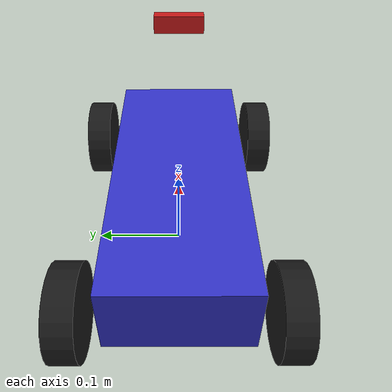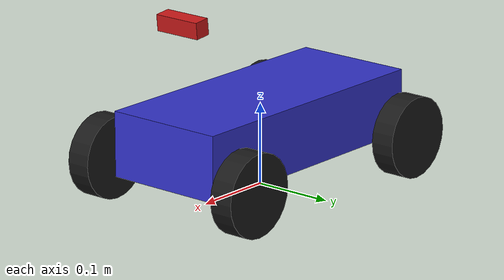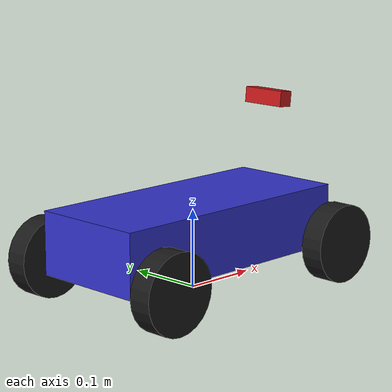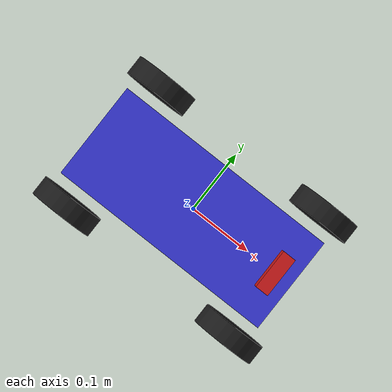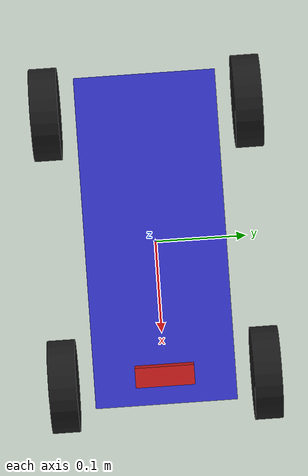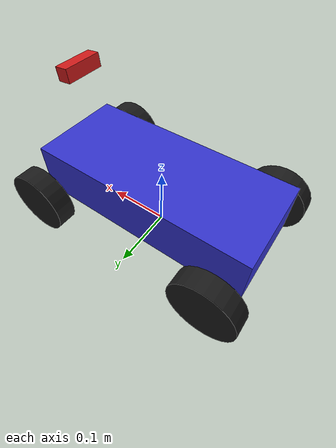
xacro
<?xml version="1.0" encoding="utf-8"?>
<robot name="ackerman_robot" xmlns:xacro="http://www.ros.org/wiki/xacro">

  <!-- ================= PROPERTIES ================= -->

  <!-- ================= BASE ================= -->
  <link name="base_footprint"/>

  <link name="base_link">
    <inertial>
      <origin xyz="0.0115 0 0.0687" rpy="0 0 0" />
      <mass value="1.8886" />
      <inertia ixx="0.00576" ixy="0.0" ixz="0.000003" iyy="0.01878" iyz="0.0" izz="0.02437" />
    </inertial>

    <!-- Chassis Box -->
    <visual>
      <origin xyz="0.01 0 0.05" rpy="0 0 0" />
      <geometry>
        <box size="0.35 0.15 0.08"/>
      </geometry>
      <material name="blue">
        <color rgba="0.2 0.2 0.8 1" />
      </material>
    </visual>
    <collision>
      <origin xyz="0.01 0 0.05" rpy="0 0 0" />
      <geometry>
        <box size="0.35 0.15 0.08"/>
      </geometry>
    </collision>
  </link>

  <joint name="base_joint" type="fixed">
    <origin xyz="-0.0117 0 0.02677" rpy="0 0 0" />
    <parent link="base_footprint" />
    <child link="base_link" />
  </joint>

  <!-- ================= FRONT LEFT STEERING & WHEEL ================= -->
  <link name="FL_STEERING_LINK">
    <inertial>
      <origin xyz="-0.0029 0 0" rpy="0 0 0" />
      <mass value="0.0038" />
      <inertia ixx="0.0000003" ixy="0" ixz="0" iyy="0.0000006" iyz="0" izz="0.0000003" />
    </inertial>
  </link>

  <!-- FL steering: independent position command (no mimic) -->
  <joint name="FL_STEERING_JOINT" type="revolute">
    <origin xyz="0.16174 0.085 0.0235" rpy="0 0 0" />
    <parent link="base_link" />
    <child link="FL_STEERING_LINK" />
    <axis xyz="0 0 1" />
    <limit lower="-0.6" upper="0.6" effort="5" velocity="3" />
  </joint>

  <link name="FL_WHEEL_LINK">
    <inertial>
      <origin xyz="0 0 0" rpy="0 0 0" />
      <mass value="0.0635" />
      <inertia ixx="0.000046" ixy="0" ixz="0" iyy="0.000089" iyz="0" izz="0.000046" />
    </inertial>
    <visual>
      <origin xyz="0 0 0" rpy="1.57079632679 0 0" />
      <geometry>
        <cylinder radius="0.05027" length="0.03"/>
      </geometry>
      <material name="black"><color rgba="0.1 0.1 0.1 1"/></material>
    </visual>
    <collision>
      <origin xyz="0 0 0" rpy="1.57079632679 0 0" />
      <geometry>
        <cylinder radius="0.05027" length="0.03"/>
      </geometry>
    </collision>
  </link>

  <joint name="FL_WHEEL_JOINT" type="continuous">
    <origin xyz="0 0.0245 0" rpy="0 0 0" />
    <parent link="FL_STEERING_LINK" />
    <child link="FL_WHEEL_LINK" />
    <axis xyz="0 1 0" />
  </joint>

  <!-- ================= FRONT RIGHT STEERING & WHEEL ================= -->
  <link name="FR_STEERING_LINK">
    <inertial>
      <origin xyz="0.0015 0 0" rpy="0 0 0" />
      <mass value="0.0047" />
      <inertia ixx="0.0000003" ixy="0" ixz="0" iyy="0.000001" iyz="0" izz="0.0000007" />
    </inertial>
  </link>

  <!-- FR steering: independent — NO mimic. ackermann_steering_controller
       computes separate inner/outer angles from the Ackerman geometry. -->
  <joint name="FR_STEERING_JOINT" type="revolute">
    <origin xyz="0.16174 -0.085 0.0235" rpy="0 0 0" />
    <parent link="base_link" />
    <child link="FR_STEERING_LINK" />
    <axis xyz="0 0 1" />
    <limit lower="-0.6" upper="0.6" effort="5" velocity="3" />
  </joint>

  <link name="FR_WHEEL_LINK">
    <inertial>
      <origin xyz="0 0 0" rpy="0 0 0" />
      <mass value="0.0635" />
      <inertia ixx="0.000046" ixy="0" ixz="0" iyy="0.000089" iyz="0" izz="0.000046" />
    </inertial>
    <visual>
      <origin xyz="0 0 0" rpy="1.57079632679 0 0" />
      <geometry>
        <cylinder radius="0.05027" length="0.03"/>
      </geometry>
      <material name="black"><color rgba="0.1 0.1 0.1 1"/></material>
    </visual>
    <collision>
      <origin xyz="0 0 0" rpy="1.57079632679 0 0" />
      <geometry>
        <cylinder radius="0.05027" length="0.03"/>
      </geometry>
    </collision>
  </link>

  <joint name="FR_WHEEL_JOINT" type="continuous">
    <origin xyz="0 -0.0245 0" rpy="0 0 0" />
    <parent link="FR_STEERING_LINK" />
    <child link="FR_WHEEL_LINK" />
    <axis xyz="0 1 0" />
  </joint>

  <!-- ================= REAR LEFT WHEEL ================= -->
  <link name="BL_WHEEL_LINK">
    <inertial>
      <origin xyz="0 0 0" rpy="0 0 0" />
      <mass value="0.0616" />
      <inertia ixx="0.000046" ixy="0" ixz="0" iyy="0.000089" iyz="0" izz="0.000046" />
    </inertial>
    <visual>
      <origin xyz="0 0 0" rpy="1.57079632679 0 0" />
      <geometry>
        <cylinder radius="0.05027" length="0.03"/>
      </geometry>
      <material name="black"><color rgba="0.1 0.1 0.1 1"/></material>
    </visual>
    <collision>
      <origin xyz="0 0 0" rpy="1.57079632679 0 0" />
      <geometry>
        <cylinder radius="0.05027" length="0.03"/>
      </geometry>
    </collision>
  </link>

  <joint name="BL_WHEEL_JOINT" type="continuous">
    <origin xyz="-0.13328 0.1093 0.02075" rpy="0 0 0" />
    <parent link="base_link" />
    <child link="BL_WHEEL_LINK" />
    <axis xyz="0 1 0" />
  </joint>

  <!-- ================= REAR RIGHT WHEEL ================= -->
  <link name="BR_WHEEL_LINK">
    <inertial>
      <origin xyz="0 0 0" rpy="0 0 0" />
      <mass value="0.0616" />
      <inertia ixx="0.000046" ixy="0" ixz="0" iyy="0.000089" iyz="0" izz="0.000046" />
    </inertial>
    <visual>
      <origin xyz="0 0 0" rpy="1.57079632679 0 0" />
      <geometry>
        <cylinder radius="0.05027" length="0.03"/>
      </geometry>
      <material name="black"><color rgba="0.1 0.1 0.1 1"/></material>
    </visual>
    <collision>
      <origin xyz="0 0 0" rpy="1.57079632679 0 0" />
      <geometry>
        <cylinder radius="0.05027" length="0.03"/>
      </geometry>
    </collision>
  </link>

  <joint name="BR_WHEEL_JOINT" type="continuous">
    <origin xyz="-0.13328 -0.1093 0.02075" rpy="0 0 0" />
    <parent link="base_link" />
    <child link="BR_WHEEL_LINK" />
    <axis xyz="0 1 0" />
  </joint>

  <!-- ================= CAMERA ================= -->
  <link name="CAMERA_LINK">
    <inertial>
      <origin xyz="0 0 0" rpy="0 0 0" />
      <mass value="0.0548" />
      <inertia ixx="0.000069" ixy="0" ixz="0" iyy="0.000004" iyz="0" izz="0.000066" />
    </inertial>
    <visual>
      <origin xyz="0 0 0" rpy="0 0 0" />
      <geometry>
        <box size="0.02 0.06 0.02"/>
      </geometry>
      <material name="red"><color rgba="0.8 0.1 0.1 1"/></material>
    </visual>
    <collision>
      <origin xyz="0 0 0" rpy="0 0 0" />
      <geometry>
        <box size="0.02 0.06 0.02"/>
      </geometry>
    </collision>
  </link>

  <!-- Camera slightly angled downward (0.1 rad pitch) to see objects on ground -->
  <joint name="CAMERA_JOINT" type="fixed">
    <origin xyz="0.15 0.0 0.2" rpy="0 0.1 0" />
    <parent link="base_link" />
    <child link="CAMERA_LINK" />
  </joint>

  <!-- ================= GAZEBO CAMERA SENSOR ================= -->
  <gazebo reference="CAMERA_LINK">
    <sensor name="camera_sensor" type="camera">
      <camera>
        <horizontal_fov>1.396</horizontal_fov>
        <image>
          <width>640</width>
          <height>480</height>
          <format>R8G8B8</format>
        </image>
        <clip>
          <near>0.05</near>
          <far>50.0</far>
        </clip>
      </camera>
      <always_on>1</always_on>
      <update_rate>30</update_rate>
      <visualize>true</visualize>
      <topic>camera/image_raw</topic>
      <gz_frame_id>CAMERA_LINK</gz_frame_id>
    </sensor>
  </gazebo>

  <!-- Sensors system plugin (required for camera to render) -->
  <gazebo>
    <plugin filename="gz-sim-sensors-system" name="gz::sim::systems::Sensors">
      <render_engine>ogre2</render_engine>
    </plugin>
  </gazebo>

  <!-- ================= ROS 2 CONTROL ================= -->
  <!-- gz_ros2_control plugin — reads controllers.yaml via the controller_manager -->
  <gazebo>
    <plugin filename="gz_ros2_control-system" name="gz_ros2_control::GazeboSimROS2ControlPlugin">
      <parameters>$(find mobilerobo)/config/controllers.yaml</parameters>
    </plugin>
  </gazebo>

  <ros2_control name="GazeboSimSystem" type="system">
    <hardware>
      <plugin>gz_ros2_control/GazeboSimSystem</plugin>
    </hardware>

    <!-- Front Left Steering — position command, position+velocity state -->
    <joint name="FL_STEERING_JOINT">
      <command_interface name="position"/>
      <state_interface name="position"/>
      <state_interface name="velocity"/>
    </joint>

    <!-- Front Right Steering — position command, position+velocity state -->
    <joint name="FR_STEERING_JOINT">
      <command_interface name="position"/>
      <state_interface name="position"/>
      <state_interface name="velocity"/>
    </joint>

    <!-- Rear Left Drive Wheel — velocity command + state -->
    <joint name="BL_WHEEL_JOINT">
      <command_interface name="velocity"/>
      <state_interface name="velocity"/>
      <state_interface name="position"/>
    </joint>

    <!-- Rear Right Drive Wheel — velocity command + state -->
    <joint name="BR_WHEEL_JOINT">
      <command_interface name="velocity"/>
      <state_interface name="velocity"/>
      <state_interface name="position"/>
    </joint>

    <!-- Front wheels — state-only (passive, steered by steering link) -->
    <joint name="FL_WHEEL_JOINT">
      <state_interface name="velocity"/>
      <state_interface name="position"/>
    </joint>

    <joint name="FR_WHEEL_JOINT">
      <state_interface name="velocity"/>
      <state_interface name="position"/>
    </joint>
  </ros2_control>

</robot>
